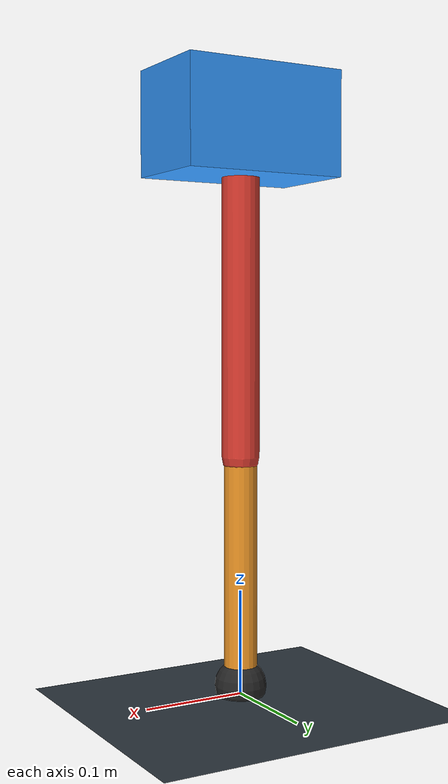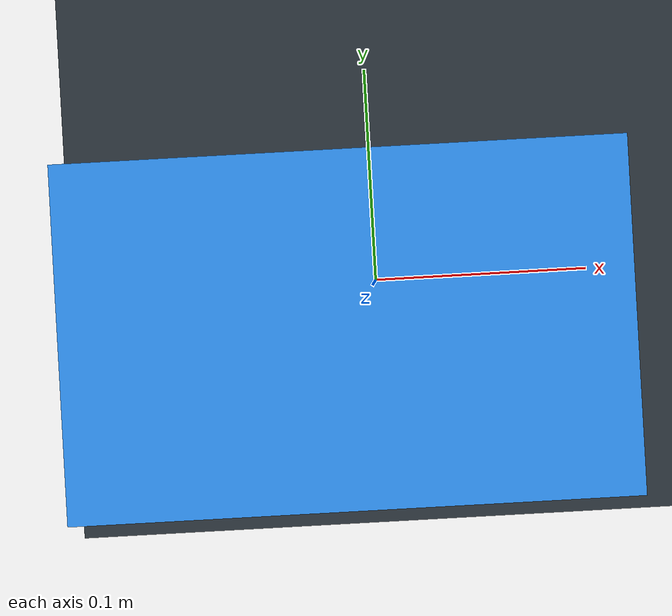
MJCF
<mujoco model="single_axis_two_bar">
  <compiler angle="radian" inertiafromgeom="true"/>
  <option timestep="0.001" integrator="implicitfast" gravity="0 0 -9.81"/>
  <default>
    <joint damping="0.08"/>
    <geom friction="1.2 0.01 0.0001" condim="3"/>
  </default>
  <worldbody>
    <geom name="floor" type="plane" size="5 5 0.1" rgba="0.18 0.22 0.25 1"/>
    <body name="carriage" pos="0 0 0.5441095610663029">
      <joint name="pole_slide" type="slide" axis="0 0 1"/>
      <geom name="payload" type="box" size="0.08 0.05 0.05" mass="3.338948960412066" rgba="0.2 0.6 1 1"/>
      <body name="thigh" pos="0 0 0">
        <joint name="hip" type="hinge" axis="0 1 0"/>
        <geom name="thigh_link" type="capsule" fromto="0 0 0 0 0 -0.3150070029768154" size="0.018" mass="0.22444665207127912" rgba="0.9 0.25 0.2 1"/>
        <body name="shank" pos="0 0 -0.3150070029768154">
          <joint name="knee" type="hinge" axis="0 1 0"/>
          <geom name="shank_link" type="capsule" fromto="0 0 0 0 0 -0.2201574929678268" size="0.016" mass="0.15686512286417886" rgba="0.95 0.6 0.15 1"/>
          <geom name="foot" type="sphere" pos="0 0 -0.2201574929678268" size="0.025" mass="0.03" rgba="0.15 0.15 0.15 1"/>
          <site name="toe" pos="0 0 -0.2201574929678268" size="0.008"/>
        </body>
      </body>
    </body>
  </worldbody>
  <actuator>
    <motor name="hip_motor" joint="hip" ctrlrange="-9.749677502194864 9.749677502194864"/>
    <motor name="knee_motor" joint="knee" ctrlrange="-62.74670378055303 62.74670378055303"/>
  </actuator>
</mujoco>
